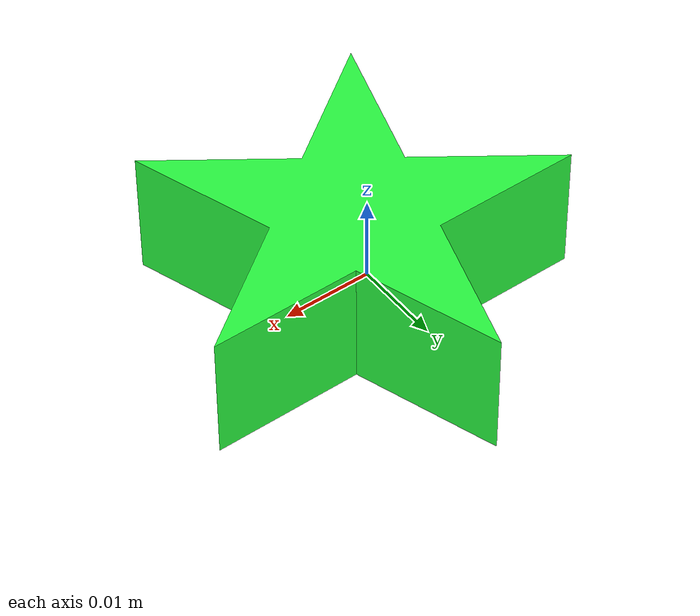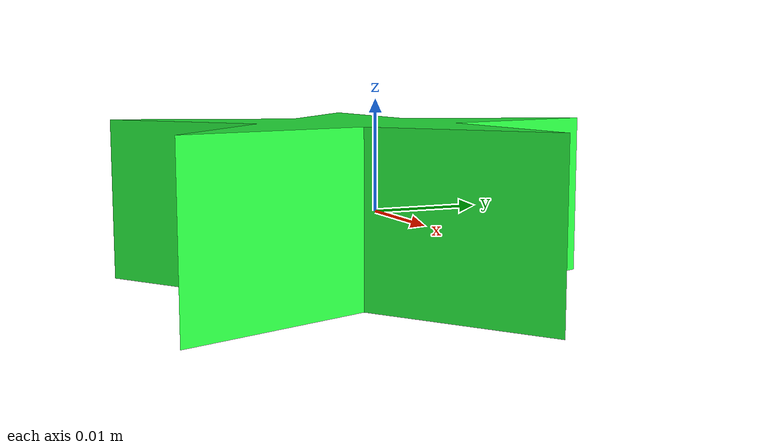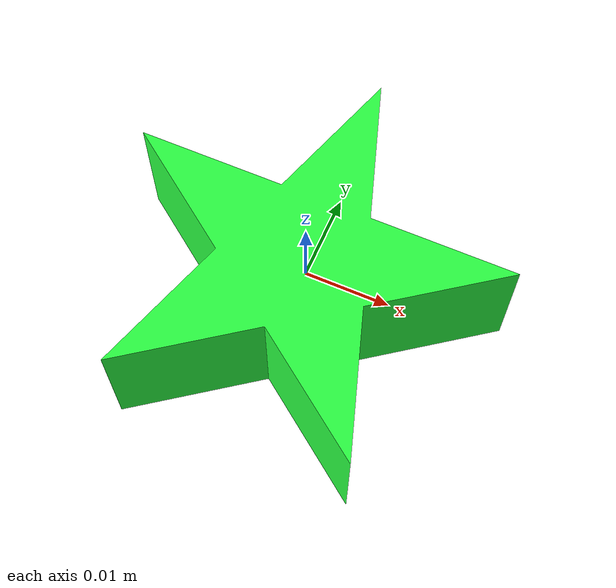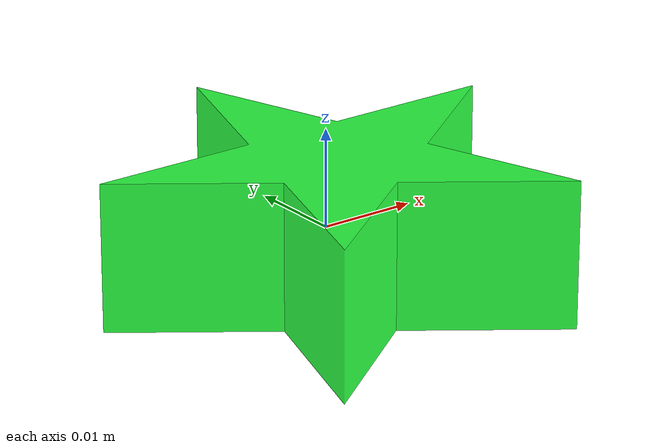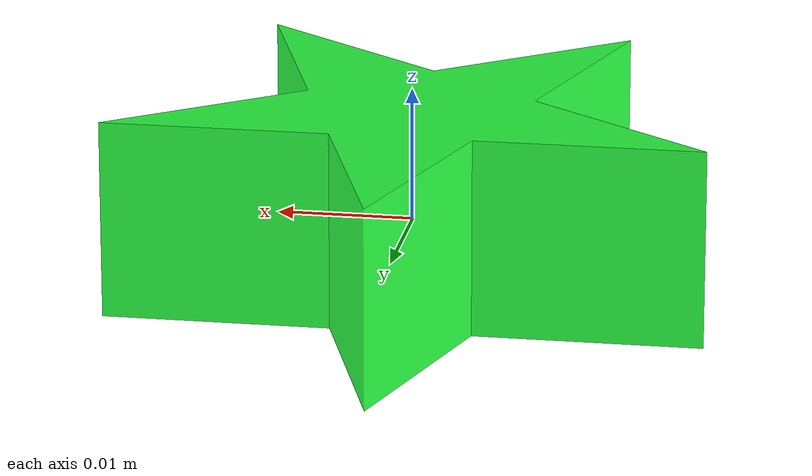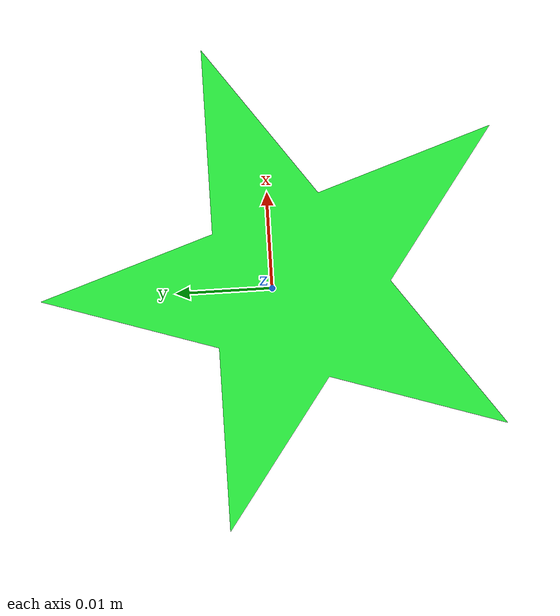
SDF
<?xml version="1.0" ?>
<sdf version="1.5">
  <model name="etoile_verte">
    <static>false</static>
    <link name="link">
      <pose>0 0 0 0 0 0</pose>
      <collision name="collision">
        <geometry>
          <mesh>
            <uri>model://etoile_verte/meshes/etoile_verte.dae</uri>
          </mesh>
        </geometry>
      </collision>
      <visual name="visual">
        <geometry>
          <mesh>
            <uri>model://etoile_verte/meshes/etoile_verte.dae</uri>
          </mesh>
        </geometry>
        <material>

        </material>
      </visual>
      <inertial>
        <mass>0.015</mass>
        <inertia> <!-- inertias are tricky to compute -->
          <!-- http://gazebosim.org/tutorials?tut=inertia&cat=build_robot -->
          <ixx>0.6e-6</ixx>       <!-- for a box: ixx = 0.083 * mass * (y*y + z*z) -->
          <ixy>0.0</ixy>        <!-- for a box: ixy = 0 -->
          <ixz>0.0</ixz>         <!-- for a box: ixz = 0 -->
          <iyy>0.6e-6</iyy>       <!-- for a box: iyy = 0.083 * mass * (x*x + z*z) -->
          <iyz>0.0</iyz>         <!-- for a box: iyz = 0 -->
          <izz>0.9e-6</izz>       <!-- for a box: izz = 0.083 * mass * (x*x + y*y) -->
        </inertia>
      </inertial>
    </link>
  </model>
</sdf>
